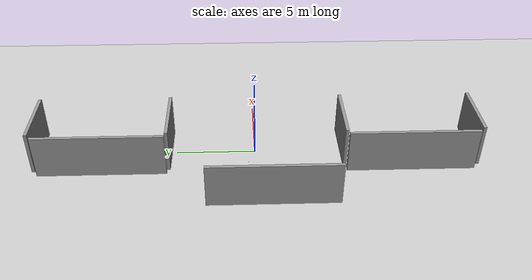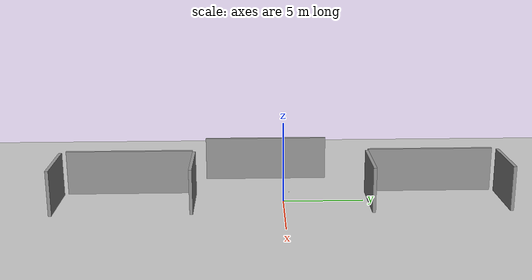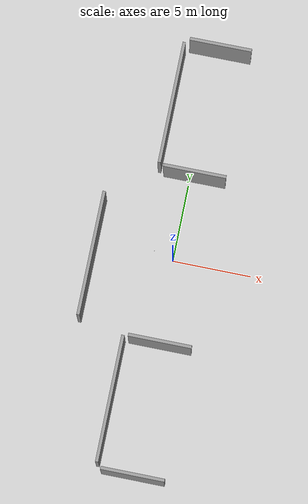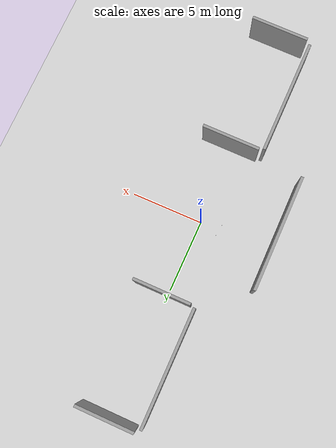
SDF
<?xml version="1.0" ?>
<sdf version="1.4">
  <world name="default">
	<plugin name="ros_link_attacher_plugin" filename="libgazebo_ros_link_attacher.so"/>

	 <scene>
	    <shadows>0</shadows>
  </scene>
    <physics type="ode">
      <gravity>0 0 -9.81</gravity>
      <ode>
        <solver>
          <type>quick</type>
          <iters>20</iters>
          <sor>1.0</sor>
        </solver>
        <constraints>
          <cfm>0.0</cfm>
          <erp>0.2</erp>
          <contact_max_correcting_vel>100.0</contact_max_correcting_vel>
          <contact_surface_layer>0.0</contact_surface_layer>
        </constraints>
      </ode>
      <real_time_update_rate>1000</real_time_update_rate>
      <max_step_size>0.001</max_step_size>
    </physics>
    <!-- A global light source -->
    <include>
      <uri>model://sun</uri>
    </include>
    <!-- A ground plane -->
    <include>
      <uri>model://ground_plane</uri>
    </include>

		<include>
      <uri>model://box_red</uri>
      			<name>box_red_1</name>
      <pose>-1.4 -0.4 0.2 0 0.0 0</pose>
    </include>

		<include>
      <uri>model://box_red</uri>
      			<name>box_red_2</name>
      <pose>-1.3 0.4 0.2 0 0.0 0</pose>
    </include>

		<include>
      <uri>model://w1</uri>
			<name>w1_1</name>
      <pose>-5.0 -1 0.0 0 0.0 -1.57</pose>
    </include>

		<include>
	    <uri>model://w1</uri>
			<name>w1_2</name>
	    <pose>-2 9.5 0.0 0 0.0 -1.57</pose>
	  </include>

		<include>
      <uri>model://w1</uri>
			<name>w1_3</name>
      <pose>-2 -9.7 0.0 0 0.0 -1.57</pose>
    </include>

		<include>
      <uri>model://w2</uri>
			<name>w2_1</name>
      <pose>0.3 -14 0.0 0 0.0 0</pose>
    </include>

		<include>
      <uri>model://w2</uri>
			<name>w2_2</name>
      <pose>0.3 -5.6 0.0 0 0.0 0</pose>
    </include>

		<include>
      <uri>model://w2</uri>
			<name>w2_3</name>
      <pose>0.3 5.4 0.0 0 0.0 0</pose>
    </include>

		<include>
      <uri>model://w2</uri>
			<name>w2_4</name>
      <pose>0.3 13.8 0.0 0 0.0 0</pose>
    </include>

		<include>
      <uri>model://platform</uri>
			<name>platform_blue</name>
      <pose>0 -9.6 0 0 0 0</pose>
    </include>

		<include>
      <uri>model://platform</uri>
			<name>platform_red</name>
      <pose>0 9.6 0 0 0 0</pose>
    </include>

		<include>
      <uri>model://platform</uri>
			<name>station_left</name>
      <pose>0 -3.5 0 0 0 0</pose>
    </include>

  </world>
</sdf>

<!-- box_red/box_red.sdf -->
<!-- funziona in warehouse_2.world-->
<sdf version='1.6'>
 <model name='box_red'>
   <static>0</static>
   <link name='link'>
     <inertial>
       <mass>1.0</mass>
       <inertia>
         <ixx>0.1</ixx>
	 <ixy>0.0</ixy>
	 <ixz>0.0</ixz>
	 <iyy>0.1</iyy>
	 <iyz>0.0</iyz>
	 <izz>0.1</izz>
       </inertia>
     </inertial>
     <collision name="collision">
     <pose frame=''>0 0 0 0 -0 0</pose>
     <geometry>
     <mesh>
      <uri>model://box_red/meshes/box_red.dae</uri>
      <scale>0.5 0.5 0.5</scale>
     </mesh>
    </geometry>
    <surface>
     <bounce />
     <friction>
       <ode>
         <mu>1.0</mu>
         <mu2>1.0</mu2>
       </ode>
     </friction>
     <contact>
       <ode>
         <kp>10000000.0</kp>
         <kd>0.10</kd>
         <min_depth>0.0</min_depth>
         <max_vel>0.0</max_vel>
       </ode>
     </contact>
    </surface>
   </collision>
    <visual name='visual'>
      <geometry>
        <mesh>
          <uri>model://box_red/meshes/box_red.dae</uri>
          <scale>0.5 0.5 0.5</scale>
        </mesh>
      </geometry>
    </visual>
    <self_collide>0</self_collide>
    <enable_wind>0</enable_wind>
    <kinematic>0</kinematic>
  </link>
 </model>
</sdf>

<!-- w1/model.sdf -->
<sdf version="1.5">
  <model name="grey_wall">
    <static>true</static>
    <link name="link">
      <pose>0 0 1.4 0 0 0</pose>
      <collision name="collision">
        <geometry>
          <box>
            <size>8 0.2 2.8</size>
          </box>
        </geometry>
      </collision>
      <visual name="visual">
        <cast_shadows>false</cast_shadows>
        <geometry>
          <box>
            <size>8 0.2 2.8</size>
          </box>
        </geometry>
        <material>
          <script>
            <uri>model://w1/materials/scripts</uri>
            <uri>model://w1/materials/textures</uri>
            <name>vrc/grey_wall</name>
          </script>
        </material>
      </visual>
    </link>
  </model>
</sdf>

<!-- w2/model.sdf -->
<sdf version="1.5">
  <model name="grey_wall">
    <static>true</static>
    <link name="link">
      <pose>0 0 1.4 0 0 0</pose>
      <collision name="collision">
        <geometry>
          <box>
            <size>4 0.2 2.8</size>
          </box>
        </geometry>
      </collision>
      <visual name="visual">
        <cast_shadows>false</cast_shadows>
        <geometry>
          <box>
            <size>4 0.2 2.8</size>
          </box>
        </geometry>
        <material>
          <script>
            <uri>model://w2/materials/scripts</uri>
            <uri>model://w2/materials/textures</uri>
            <name>vrc/grey_wall</name>
          </script>
        </material>
      </visual>
    </link>
  </model>
</sdf>

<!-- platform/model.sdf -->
<sdf version="1.6">
  <model name="platform">
    <static>false</static>
    <link name="dummy_upper"/>

    <joint name="world_joint" type="fixed">
      <parent>world</parent>
      <child>dummy_upper</child>
    </joint>
  </model>
</sdf>
